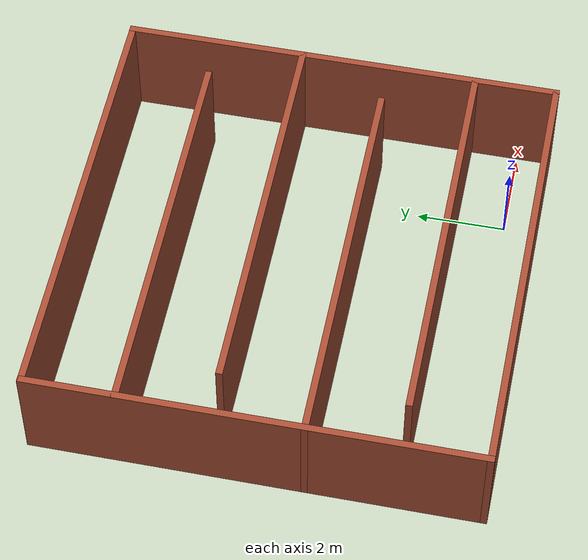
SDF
<?xml version='1.0'?>
<sdf version='1.6'>
  <model name='puzzle'>
    <pose frame=''>-2.72976 4.22807 0 0 -0 0</pose>
    <link name='Wall_14'>
      <collision name='Wall_14_Collision'>
        <geometry>
          <box>
            <size>10 0.15 2.5</size>
          </box>
        </geometry>
        <pose frame=''>0 0 1.25 0 -0 0</pose>
      </collision>
      <visual name='Wall_14_Visual'>
        <pose frame=''>0 0 1.25 0 -0 0</pose>
        <geometry>
          <box>
            <size>10 0.15 2.5</size>
          </box>
        </geometry>
        <material>
          <script>
            <uri>file://media/materials/scripts/gazebo.material</uri>
            <name>Gazebo/Bricks</name>
          </script>
          <ambient>1 1 1 1</ambient>
        </material>
        <meta>
          <layer>0</layer>
        </meta>
      </visual>
      <pose frame=''>0 -4.925 0 0 -0 0</pose>
    </link>
    <link name='Wall_16'>
      <collision name='Wall_16_Collision'>
        <geometry>
          <box>
            <size>10 0.15 2.5</size>
          </box>
        </geometry>
        <pose frame=''>0 0 1.25 0 -0 0</pose>
      </collision>
      <visual name='Wall_16_Visual'>
        <pose frame=''>0 0 1.25 0 -0 0</pose>
        <geometry>
          <box>
            <size>10 0.15 2.5</size>
          </box>
        </geometry>
        <material>
          <script>
            <uri>file://media/materials/scripts/gazebo.material</uri>
            <name>Gazebo/Bricks</name>
          </script>
          <ambient>1 1 1 1</ambient>
        </material>
        <meta>
          <layer>0</layer>
        </meta>
      </visual>
      <pose frame=''>-4.925 0 0 0 -0 1.5708</pose>
    </link>
    <link name='Wall_20'>
      <collision name='Wall_20_Collision'>
        <geometry>
          <box>
            <size>10 0.15 2.5</size>
          </box>
        </geometry>
        <pose frame=''>0 0 1.25 0 -0 0</pose>
      </collision>
      <visual name='Wall_20_Visual'>
        <pose frame=''>0 0 1.25 0 -0 0</pose>
        <geometry>
          <box>
            <size>10 0.15 2.5</size>
          </box>
        </geometry>
        <material>
          <script>
            <uri>file://media/materials/scripts/gazebo.material</uri>
            <name>Gazebo/Bricks</name>
          </script>
          <ambient>1 1 1 1</ambient>
        </material>
        <meta>
          <layer>0</layer>
        </meta>
      </visual>
      <pose frame=''>4.925 0 0 0 -0 1.5708</pose>
    </link>
    <link name='Wall_21'>
      <collision name='Wall_21_Collision'>
        <geometry>
          <box>
            <size>10 0.15 2.5</size>
          </box>
        </geometry>
        <pose frame=''>0 0 1.25 0 -0 0</pose>
      </collision>
      <visual name='Wall_21_Visual'>
        <pose frame=''>0 0 1.25 0 -0 0</pose>
        <geometry>
          <box>
            <size>10 0.15 2.5</size>
          </box>
        </geometry>
        <material>
          <script>
            <uri>file://media/materials/scripts/gazebo.material</uri>
            <name>Gazebo/Bricks</name>
          </script>
          <ambient>1 1 1 1</ambient>
        </material>
        <meta>
          <layer>0</layer>
        </meta>
      </visual>
      <pose frame=''>0 4.925 0 0 -0 3.14159</pose>
    </link>
    <link name='Wall_25'>
      <collision name='Wall_25_Collision'>
        <geometry>
          <box>
            <size>9 0.15 2.5</size>
          </box>
        </geometry>
        <pose frame=''>0 0 1.25 0 -0 0</pose>
      </collision>
      <visual name='Wall_25_Visual'>
        <pose frame=''>0 0 1.25 0 -0 0</pose>
        <geometry>
          <box>
            <size>9 0.15 2.5</size>
          </box>
        </geometry>
        <material>
          <script>
            <uri>file://media/materials/scripts/gazebo.material</uri>
            <name>Gazebo/Bricks</name>
          </script>
          <ambient>1 1 1 1</ambient>
        </material>
        <meta>
          <layer>0</layer>
        </meta>
      </visual>
      <pose frame=''>0.5 -3.075 0 0 -0 3.14159</pose>
    </link>
    <link name='Wall_33'>
      <collision name='Wall_33_Collision'>
        <geometry>
          <box>
            <size>9 0.15 2.5</size>
          </box>
        </geometry>
        <pose frame=''>0 0 1.25 0 -0 0</pose>
      </collision>
      <visual name='Wall_33_Visual'>
        <pose frame=''>0 0 1.25 0 -0 0</pose>
        <geometry>
          <box>
            <size>9 0.15 2.5</size>
          </box>
        </geometry>
        <material>
          <script>
            <uri>file://media/materials/scripts/gazebo.material</uri>
            <name>Gazebo/Bricks</name>
          </script>
          <ambient>1 1 1 1</ambient>
        </material>
        <meta>
          <layer>0</layer>
        </meta>
      </visual>
      <pose frame=''>0.5 0.925 0 0 -0 3.14159</pose>
    </link>
    <link name='Wall_36'>
      <collision name='Wall_36_Collision'>
        <geometry>
          <box>
            <size>9 0.15 2.5</size>
          </box>
        </geometry>
        <pose frame=''>0 0 1.25 0 -0 0</pose>
      </collision>
      <visual name='Wall_36_Visual'>
        <pose frame=''>0 0 1.25 0 -0 0</pose>
        <geometry>
          <box>
            <size>9 0.15 2.5</size>
          </box>
        </geometry>
        <material>
          <script>
            <uri>file://media/materials/scripts/gazebo.material</uri>
            <name>Gazebo/Bricks</name>
          </script>
          <ambient>1 1 1 1</ambient>
        </material>
        <meta>
          <layer>0</layer>
        </meta>
      </visual>
      <pose frame=''>-0.5 -1.075 0 0 -0 0</pose>
    </link>
    <link name='Wall_42'>
      <collision name='Wall_42_Collision'>
        <geometry>
          <box>
            <size>9 0.15 2.5</size>
          </box>
        </geometry>
        <pose frame=''>0 0 1.25 0 -0 0</pose>
      </collision>
      <visual name='Wall_42_Visual'>
        <pose frame=''>0 0 1.25 0 -0 0</pose>
        <geometry>
          <box>
            <size>9 0.15 2.5</size>
          </box>
        </geometry>
        <material>
          <script>
            <uri>file://media/materials/scripts/gazebo.material</uri>
            <name>Gazebo/Bricks</name>
          </script>
          <ambient>1 1 1 1</ambient>
        </material>
        <meta>
          <layer>0</layer>
        </meta>
      </visual>
      <pose frame=''>-0.5 2.925 0 0 -0 0</pose>
    </link>
    <static>1</static>
  </model>
</sdf>
